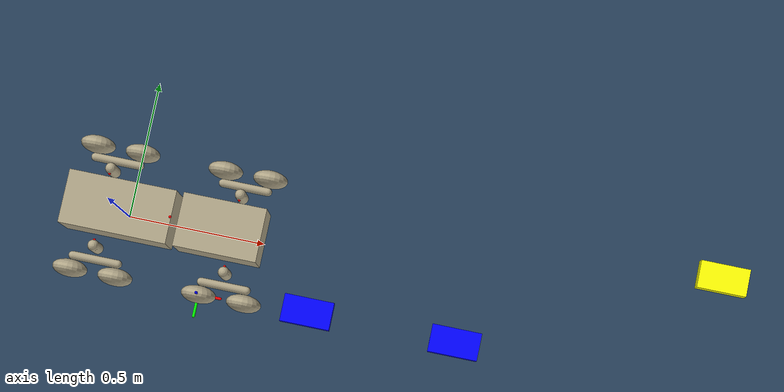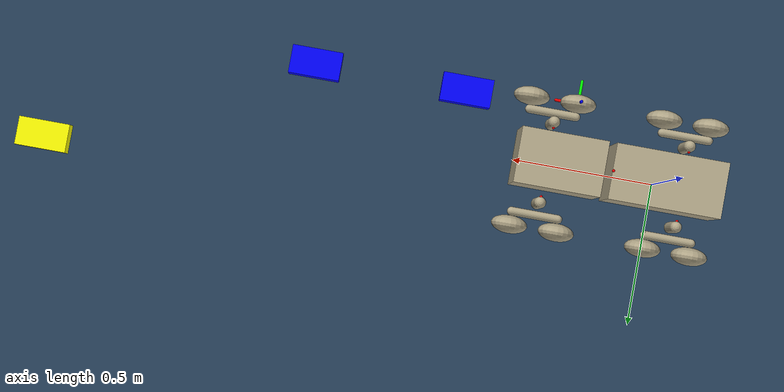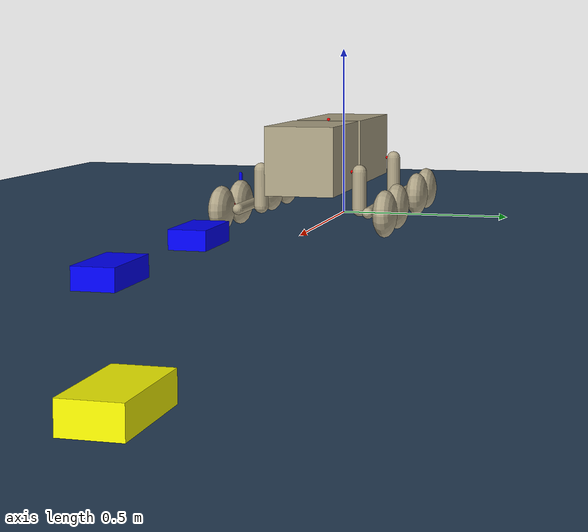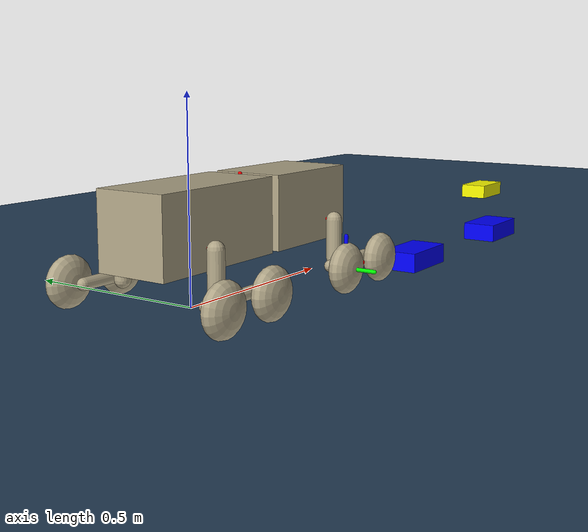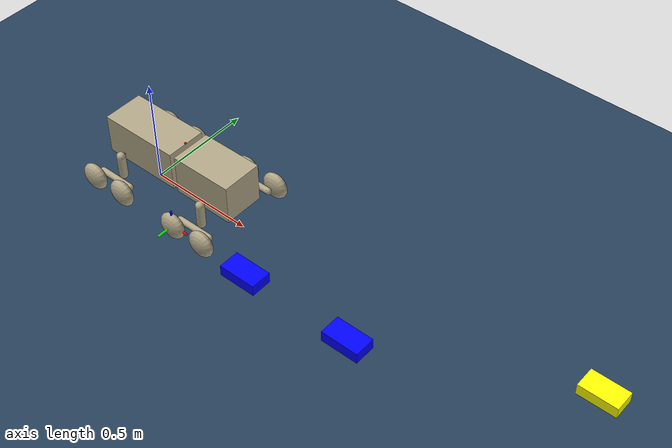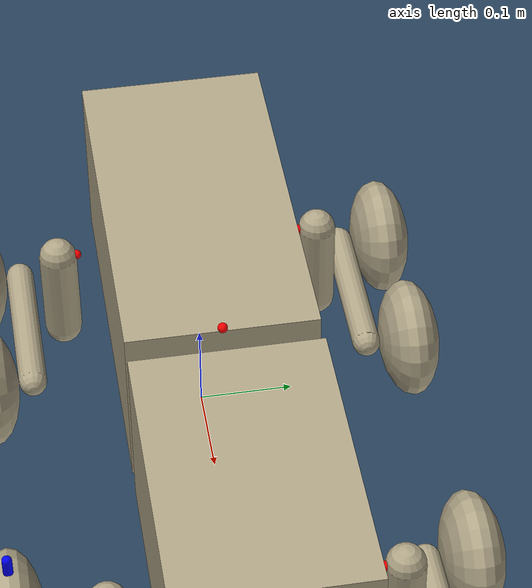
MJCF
<mujoco model="walter_sr scene">
  <include file="WaLTER_Senior_v3_damped_nobatt.xml"/>

  <statistic center="0 0 0.1" extent="0.8"/>

  <visual>
    <headlight diffuse="0.6 0.6 0.6" ambient="0.3 0.3 0.3" specular="0 0 0"/>
    <rgba haze="0.15 0.25 0.35 1"/>
    <global azimuth="120" elevation="-20"/>
  </visual>

  <asset>
    <texture type="skybox" builtin="gradient" rgb1="0.3 0.5 0.7" rgb2="0 0 0" width="512" height="3072"/>
    <texture type="2d" name="groundplane" builtin="checker" mark="edge" rgb1="0.2 0.3 0.4" rgb2="0.1 0.2 0.3"
      markrgb="0.8 0.8 0.8" width="300" height="300"/>
    <material name="groundplane" texture="groundplane" texuniform="true" texrepeat="5 5" reflectance="0.2"/>
    <material name="wood" rgba="0.7 0.5 0.3 1"/>
  </asset>

  <worldbody>
    <light pos="0 0 1.5" dir="0 0 -1" directional="true"/>
    <camera name="default" pos="0.846 -1.465 0.916" xyaxes="0.866 0.500 0.000 -0.171 0.296 0.940"/>
    <geom name="floor" size="0 0 0.05" type="plane" material="groundplane" solref="0.01 1.0"/>

    <geom name="tile3" type="box" pos="0.705 -0.21 0.0" size="0.09 0.05 0.05" rgba="0.0 0.0 1.0 1"/>

    <geom name="tile9" type="box" pos="1.245 -0.21 0.0" size="0.09 0.05 0.05" rgba="0.0 0.0 1.0 1"/>

    <geom name="tile20" type="box" pos="2.145 0.21 0.0" size="0.09 0.05 0.05" rgba="1.0 1.0 0.0 1"/>

  </worldbody>

</mujoco>

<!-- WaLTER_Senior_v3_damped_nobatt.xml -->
<mujoco model="MuJoCo Model">
  <compiler angle="radian" autolimits="false"/>

  <default>
    <general ctrllimited="true"/>
  </default>
<!-- add 0.035 -->
  <worldbody>
    <body name="torso" pos="0 0 0.2">
      <site name="torso_site" pos="0.188 0 0.095" type="sphere" rgba="1 0 0 1"/>
      <joint name="torso_joint" type="free" limited="false" actuatorfrclimited="false"/>
      <geom size="0.1909 0.09525 0.0936625" type="box" mass="11.0" rgba="0.694118 0.65098 0.533333 1"/>
      <body name="torso_left_thigh" pos="-0.0755 0.12065 -0.035">
        <joint name="torso_left_thigh_joint" pos="0 0 0" axis="0 1 0" armature="0.0072" damping="0.25"/>
        <geom name="torso_left_thigh_geom" size="0.02 0.0508" pos="0 0.02 -0.0508" type="capsule" mass="0.461" rgba="0.694118 0.65098 0.533333 1"/>
        <site name="tl_thigh_site" pos="0 0 0" rgba="1 0 0 1"/>
        <body name="torso_left_shin" pos="0 0.06135 -0.1016">
          <joint name="torso_left_thigh_shin_joint" pos="0 0 0" axis="0 1 0" armature="0.01805" damping="1.0"/>
          <geom name="torso_left_shin_geom" size="0.015 0.08255" quat="0.707107 0 0.707107 0" type="capsule" mass="0.305" rgba="0.694118 0.65098 0.533333 1"/>
          <site name="tl_shin_site" pos="0 0 0" rgba="1 0 0 1"/>
          <body name="torso_left_front_wheel" pos="0.08255 0.04675 0">
            <geom name="torso_left_front_wheel_geom" size="0.0635 0.0635 0.03175" quat="0.707107 0.707107 0 0" type="ellipsoid" solref="0.02 0.9" mass="0.873" rgba="0.694118 0.65098 0.533333 1"/>
            <site name="tlf_wheel_site" pos="0 0 0" size="0.0635 0.0635 0.03175" quat="0.707107 0.707107 0 0" type="ellipsoid" rgba="1 0 0 1"/>
          </body>
          <body name="torso_left_rear_wheel" pos="-0.08255 0.04675 0">
            <geom name="torso_left_rear_wheel_geom" size="0.0635 0.0635 0.03175" quat="0.707107 0.707107 0 0" type="ellipsoid" solref="0.02 0.9" mass="0.873" rgba="0.694118 0.65098 0.533333 1"/>
            <site name="tlr_wheel_site" pos="0 0 0" size="0.0635 0.0635 0.03175" quat="0.707107 0.707107 0 0" type="ellipsoid" rgba="1 0 0 1"/>
          </body>
        </body>
      </body>

      <body name="torso_right_thigh" pos="-0.0755 -0.12065 -0.035">
        <joint name="torso_right_thigh_joint" pos="0 0 0" axis="0 1 0" armature="0.0072" damping="0.25"/>
        <geom name="torso_right_thigh_geom" size="0.02 0.0508" pos="0 -0.02 -0.0508" type="capsule" mass="0.461" rgba="0.694118 0.65098 0.533333 1"/>
        <site name="tr_thigh_site" pos="0 0 0" rgba="1 0 0 1"/>

        <body name="torso_right_shin" pos="0 -0.06135 -0.1016">
          <joint name="torso_right_thigh_shin_joint" pos="0 0 0" axis="0 1 0" armature="0.01805" damping="1.0"/>
          <geom name="torso_right_shin_geom" size="0.015 0.08255" quat="0.707107 0 0.707107 0" type="capsule" mass="0.305" rgba="0.694118 0.65098 0.533333 1"/>
          <site name="tr_shin_site" pos="0 0 0" rgba="1 0 0 1"/>

          <body name="torso_right_front_wheel" pos="0.08255 -0.04675 0">
            <geom name="torso_right_front_wheel_geom" size="0.0635 0.0635 0.03175" quat="0.707107 0.707107 0 0" type="ellipsoid" solref="0.02 0.9" mass="0.873" rgba="0.694118 0.65098 0.533333 1"/>
            <site name="trf_wheel_site" pos="0 0 0" size="0.0635 0.0635 0.03175" quat="0.707107 0.707107 0 0" type="ellipsoid" rgba="1 0 0 1"/>
          </body>

          <body name="torso_right_rear_wheel" pos="-0.08255 -0.04675 0">
            <geom name="torso_right_rear_wheel_geom" size="0.0635 0.0635 0.03175" quat="0.707107 0.707107 0 0" type="ellipsoid" solref="0.02 0.9" mass="0.873" rgba="0.694118 0.65098 0.533333 1"/>
            <site name="trr_wheel_site" pos="0 0 0" size="0.0635 0.0635 0.03175" quat="0.707107 0.707107 0 0" type="ellipsoid" rgba="1 0 0 1"/>
          </body>
        </body>
      </body>

      <body name="head" pos="0.3638 0 0">
        <geom size="0.1475 0.09525 0.0936625" type="box" mass="6.5" rgba="0.694118 0.65098 0.533333 1"/>

        <body name="head_left_thigh" pos="0.032 0.12065 -0.035">
          <joint name="head_left_thigh_joint" pos="0 0 0" axis="0 1 0" armature="0.0072" damping="0.25"/>
          <geom name="head_left_thigh_geom" size="0.02 0.0508" pos="0 0.02 -0.0508" type="capsule" mass="0.461" rgba="0.694118 0.65098 0.533333 1"/>
          <site name="hl_thigh_site" pos="0 0 0" rgba="1 0 0 1"/>

          <body name="head_left_shin" pos="0 0.06135 -0.1016">
            <joint name="head_left_thigh_shin_joint" pos="0 0 0" axis="0 1 0" armature="0.01805" damping="1.0"/>
            <geom name="head_left_shin_geom" size="0.015 0.08255" quat="0.707107 0 0.707107 0" type="capsule" mass="0.305" rgba="0.694118 0.65098 0.533333 1"/>
            <site name="hl_shin_site" pos="0 0 0" rgba="1 0 0 1"/>

            <body name="head_left_front_wheel" pos="0.08255 0.04675 0">
              <geom name="head_left_front_wheel_geom" size="0.0635 0.0635 0.03175" quat="0.707107 0.707107 0 0" type="ellipsoid" solref="0.02 0.9" mass="0.873" rgba="0.694118 0.65098 0.533333 1"/>
              <site name="hlf_wheel_site" pos="0 0 0" size="0.0635 0.0635 0.03175" quat="0.707107 0.707107 0 0" type="ellipsoid" rgba="1 0 0 1"/>
            </body>

            <body name="head_left_rear_wheel" pos="-0.08255 0.04675 0">
              <geom name="head_left_rear_wheel_geom" size="0.0635 0.0635 0.03175" quat="0.707107 0.707107 0 0" type="ellipsoid" solref="0.02 0.9" mass="0.873" rgba="0.694118 0.65098 0.533333 1"/>
              <site name="hlr_wheel_site" pos="0 0 0" size="0.0635 0.0635 0.03175" quat="0.707107 0.707107 0 0" type="ellipsoid" rgba="1 0 0 1"/>
              </body>
          </body>
        </body>

        <body name="head_right_thigh" pos="0.032 -0.12065 -0.035">
          <joint name="head_right_thigh_joint" pos="0 0 0" axis="0 1 0" armature="0.0072" damping="0.25"/>
          <geom name="head_right_thigh_geom" size="0.02 0.0508" pos="0 -0.02 -0.0508" type="capsule" mass="0.461" rgba="0.694118 0.65098 0.533333 1"/>
          <site name="hr_thigh_site" pos="0 0 0" rgba="1 0 0 1"/>

          <body name="head_right_shin" pos="0 -0.06135 -0.1016">
            <joint name="head_right_thigh_shin_joint" pos="0 0 0" axis="0 1 0" armature="0.01805" damping="1.0"/>
            <geom name="head_right_shin_geom" size="0.015 0.08255" quat="0.707107 0 0.707107 0" type="capsule" mass="0.305" rgba="0.694118 0.65098 0.533333 1"/>
            <site name="hr_shin_site" pos="0 0 0" rgba="1 0 0 1"/>

            <body name="head_right_front_wheel" pos="0.08255 -0.04675 0">
              <geom name="head_right_front_wheel_geom" size="0.0635 0.0635 0.03175" quat="0.707107 0.707107 0 0" type="ellipsoid" solref="0.02 0.9" mass="0.873" rgba="0.694118 0.65098 0.533333 1"/>
              <site name="hrf_wheel_site" pos="0 0 0" size="0.0635 0.0635 0.03175" quat="0.707107 0.707107 0 0" type="ellipsoid" rgba="1 0 0 1"/>
            </body>

            <body name="head_right_rear_wheel" pos="-0.08255 -0.04675 0">
              <geom name="head_right_rear_wheel_geom" size="0.0635 0.0635 0.03175" quat="0.707107 0.707107 0 0" type="ellipsoid" solref="0.02 0.9" mass="0.873" rgba="0.694118 0.65098 0.533333 1"/>
              <site name="hrr_wheel_site" pos="0 0 0" size="0.0635 0.0635 0.03175" quat="0.707107 0.707107 0 0" type="ellipsoid" rgba="1 0 0 1"/>
              <site name="hrr_xaxis" type="capsule" size="0.005 0.04" pos="0.04 0 0" quat="0.707107 0 0.707107 0" rgba="1 0 0 1"/>
              <site name="hrr_yaxis" type="capsule" size="0.005 0.04" pos="0 -0.04 0" quat="0.707107 -0.707107 0 0" rgba="0 1 0 1"/>
              <site name="hrr_zaxis" type="capsule" size="0.005 0.04" pos="0 0 0.04" quat="1 0 0 0" rgba="0 0 1 1"/>
            </body>
          </body>
        </body>
      </body>
    </body>
  </worldbody>

  <actuator>
    <general name="bl_hip" joint="torso_left_thigh_joint" ctrllimited="true" ctrlrange="-100 100"/>
    <general name="bl_knee" joint="torso_left_thigh_shin_joint" ctrllimited="true" ctrlrange="-100 100"/>
    <general name="br_hip" joint="torso_right_thigh_joint" ctrllimited="true" ctrlrange="-100 100"/>
    <general name="br_knee" joint="torso_right_thigh_shin_joint" ctrllimited="true" ctrlrange="-100 100"/>
    <general name="fl_hip" joint="head_left_thigh_joint" ctrllimited="true" ctrlrange="-100 100"/>
    <general name="fl_knee" joint="head_left_thigh_shin_joint" ctrllimited="true" ctrlrange="-100 100"/>
    <general name="fr_hip" joint="head_right_thigh_joint" ctrllimited="true" ctrlrange="-100 100"/>
    <general name="fr_knee" joint="head_right_thigh_shin_joint" ctrllimited="true" ctrlrange="-100 100"/>
  </actuator>

  <sensor>
    <force  name="hrf_wheel_force_sensor"  site="hlr_wheel_site"/>
    <torque name="hrf_wheel_torque_sensor" site="hlr_wheel_site"/>
    <accelerometer name="body_accel" site="torso_site"/>
    <gyro name="body_gyro" site="torso_site"/>
  </sensor>

    <!-- key frame has 0,0 for wheel sites because the bodies have the positions fixed/initialized (k0 - z -) -->
    <keyframe>
      <key name="home"
        qpos="0 0 0.2025 1 0 0 0
              0 0
              0 0
              0 0
              0 0"
        ctrl="0 0
              0 0
              0 0
              0 0"/>
      <key name="flat"
        qpos='0 0 0.094 1 0 0 0 1.71253 -1.71287 1.71253 -1.71287 -1.71253 1.71287 -1.71253 1.71287'
        ctrl="0 0
              0 0
              0 0
              0 0"/>
      <key name="flat_up"
        qpos='0.0898423 -0.0025112 0.094 1 0 0 0 3.14 3.14 3.14 3.14 3.14 3.14 3.14 3.14'
        ctrl="0 0
              0 0
              0 0
              0 0"/>
      <key name="fortumbling"
        qpos="0 0 0.18 1 0 0 0
              1.5708 0
              1.5708 0
              -1.5708 0
              -1.5708 0"
        ctrl="0 0
              0 0
              0 0
              0 0"/>
      <key name="fortumbling2"
        qpos="0 0 0.18 1 0 0 0
              0.659736 -0.659736
              0.659736 -0.659736
              -0.659736 0.659736
              -0.659736 0.659736"
        ctrl="0 0
              0 0
              0 0
              0 0"/>
      <key name="shinup30deg"
        qpos="0 0 0.225 1 0 0 0
              0.534 0
              0.534 0
              -0.534 0
              -0.534 0"
        ctrl="0 0
              0 0
              0 0
              0 0"/>
      <key name="fortumbling3"
        qpos="0 0 0.18 1 0 0 0
              0.659736 -0.659736
              0.659736 -0.659736
              0.659736 -0.659736
              0.659736 -0.659736"
        ctrl="0 0
              0 0
              0 0
              0 0"/>
      <key name="fortumbling4"
        qpos="0 0 0.1835 1 0 0 0
              0.659736 -0.6
              0.659736 -0.6
              0.659736 -0.6
              0.659736 -0.6"
        ctrl="0 0
              0 0
              0 0
              0 0"/>
      <key name="fortumbling5"
        qpos="0 0 0.1835 1 0 0 0
              -0.723 0.817
              -0.723 0.817
              -0.723 0.817
              -0.723 0.817"
        ctrl="0 0
              0 0
              0 0
              0 0"/>
      <key name="stabletumbling"
        qpos="0 0 0.1805 1 0 0 0
              1.5708 0.031416
              1.5708 0.031416
              1.03673 -0.66
              1.03673 -0.66"
        ctrl="0 0
              0 0
              0 0
              0 0"/>

      <key name="stabletumbling90"
        qpos="0 0 0.179 1 0 0 0
              1.5708 0.37673
              1.5708 0.37673
              1.03673 -0.66
              1.03673 -0.66"
        ctrl="0 0
              0 0
              0 0
              0 0"/>

<key name="stabletumbling902"
        qpos="0 0 0.1805 1 0 0 0
              1.5184 0.42913
              1.5184 0.42913
              1.03673 -0.66
              1.03673 -0.66"
        ctrl="0 0
              0 0
              0 0
              0 0"/>

<key name="gallop45"
        qpos="0 0 0.1805 1 0 0 0
              1.06550 1.66740
              1.51840 0.42913
              1.50880 -0.34667
              1.03673 -0.66"
        ctrl="0 0
              0 0
              0 0
              0 0"/>

<key
        qpos="0 0 0.22 1 0 0 0
        0.872665 -0.087266
        0.872665 -0.087266
        -0.872665 0.087266
        -0.872665 0.087266"
        ctrl="0 0
              0 0
              0 0
              0 0"/>

    </keyframe>
        <!-- qpos='0.0898423 -0.0025112 0.05 1 0 0 0 3.62333 -5.46591 3.62333 -5.46591 3.62333 -5.46591 3.62333 -5.46591 ' -->
</mujoco>
